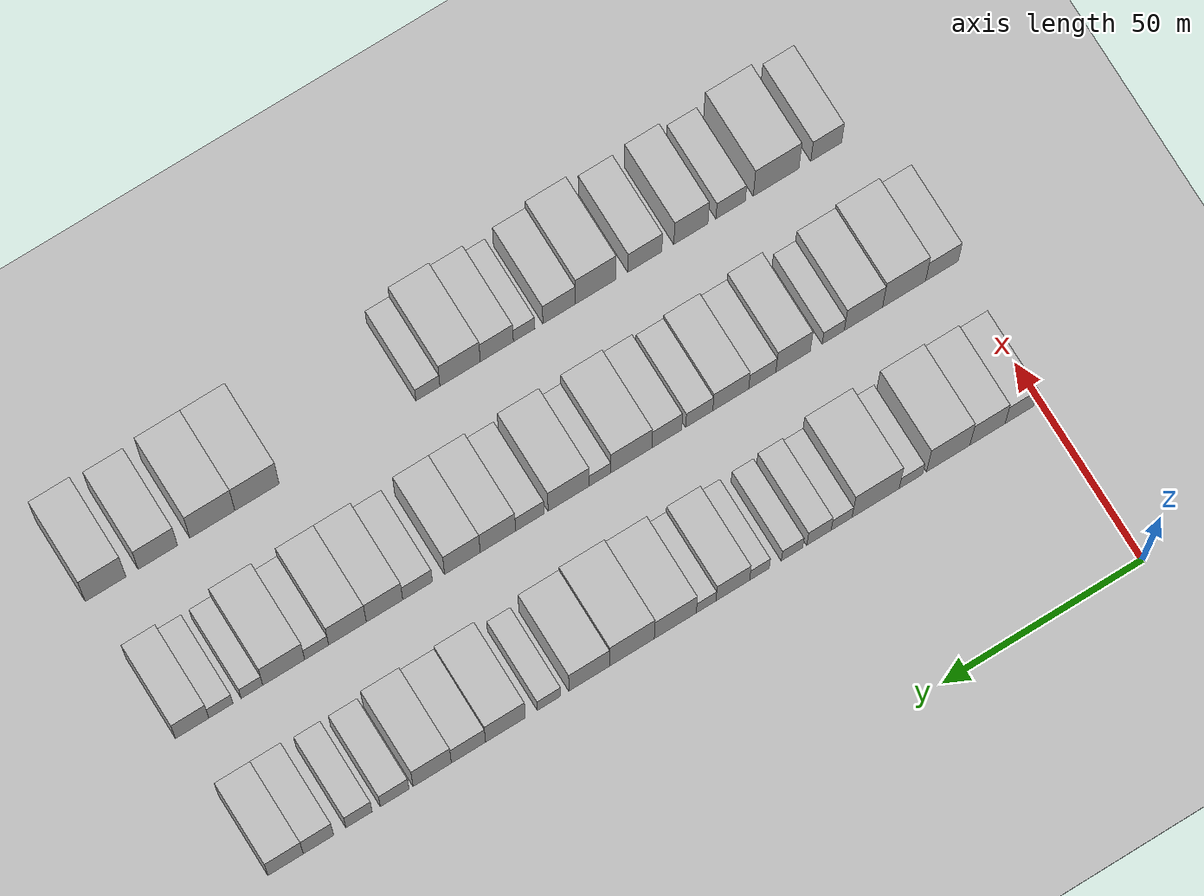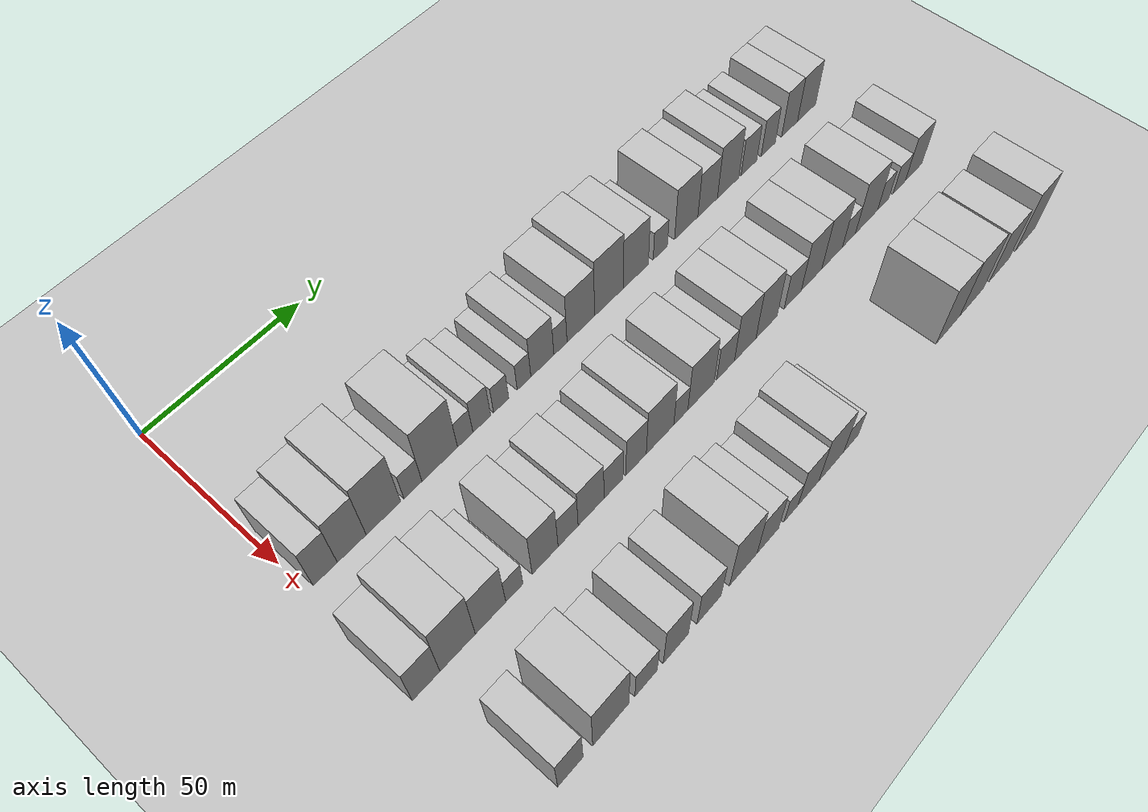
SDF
<sdf version="1.6">
 <world name="default">
  <include><name>ground_plane_1</name><uri>model://HANNAS_ground_plane</uri></include>
  <include>
   <name>ground_plane_2</name>
   <uri>model://HANNAS_ground_plane</uri>
   <pose>100 0 0  0 0 0</pose>
  </include>
  <model name="building_42">
   <static>1</static>
   <pose>50.0000 5.3623 0 0.000000 0.000000 0.000000</pose>
   <link name="link">
    <pose>0 0 9.00 0 0 0</pose>
    <collision name="collision"><geometry><box><size>20.0000 7.2227 18.0000</size></box></geometry></collision>
    <visual name="visual">
     <cast_shadows>0</cast_shadows>
     <geometry><box><size>20.0000 7.2227 18.0000</size></box></geometry>
     <material>
      <script>
       <uri>model://HANNAS_wall/materials/scripts</uri>
       <uri>model://HANNAS_wall/materials/textures</uri>
       <name>vrc/HANNAS_wall</name>
      </script>
     </material>
    </visual>
   </link>
  </model>
  <model name="building_43">
   <static>1</static>
   <pose>50.0000 13.3807 0 0.000000 0.000000 0.000000</pose>
   <link name="link">
    <pose>0 0 10.50 0 0 0</pose>
    <collision name="collision"><geometry><box><size>20.0000 8.8141 21.0000</size></box></geometry></collision>
    <visual name="visual">
     <cast_shadows>0</cast_shadows>
     <geometry><box><size>20.0000 8.8141 21.0000</size></box></geometry>
     <material>
      <script>
       <uri>model://HANNAS_wall/materials/scripts</uri>
       <uri>model://HANNAS_wall/materials/textures</uri>
       <name>vrc/HANNAS_wall</name>
      </script>
     </material>
    </visual>
   </link>
  </model>
  <model name="building_44">
   <static>1</static>
   <pose>50.0000 23.2152 0 0.000000 0.000000 0.000000</pose>
   <link name="link">
    <pose>0 0 12.00 0 0 0</pose>
    <collision name="collision"><geometry><box><size>20.0000 10.8548 24.0000</size></box></geometry></collision>
    <visual name="visual">
     <cast_shadows>0</cast_shadows>
     <geometry><box><size>20.0000 10.8548 24.0000</size></box></geometry>
     <material>
      <script>
       <uri>model://HANNAS_wall/materials/scripts</uri>
       <uri>model://HANNAS_wall/materials/textures</uri>
       <name>vrc/HANNAS_wall</name>
      </script>
     </material>
    </visual>
   </link>
  </model>
  <model name="building_45">
   <static>1</static>
   <pose>50.0000 32.5648 0 0.000000 0.000000 0.000000</pose>
   <link name="link">
    <pose>0 0 6.00 0 0 0</pose>
    <collision name="collision"><geometry><box><size>20.0000 5.8444 12.0000</size></box></geometry></collision>
    <visual name="visual">
     <cast_shadows>0</cast_shadows>
     <geometry><box><size>20.0000 5.8444 12.0000</size></box></geometry>
     <material>
      <script>
       <uri>model://HANNAS_wall/materials/scripts</uri>
       <uri>model://HANNAS_wall/materials/textures</uri>
       <name>vrc/HANNAS_wall</name>
      </script>
     </material>
    </visual>
   </link>
  </model>
  <model name="building_46">
   <static>1</static>
   <pose>50.0000 41.3841 0 0.000000 0.000000 0.000000</pose>
   <link name="link">
    <pose>0 0 12.00 0 0 0</pose>
    <collision name="collision"><geometry><box><size>20.0000 11.7943 24.0000</size></box></geometry></collision>
    <visual name="visual">
     <cast_shadows>0</cast_shadows>
     <geometry><box><size>20.0000 11.7943 24.0000</size></box></geometry>
     <material>
      <script>
       <uri>model://HANNAS_wall/materials/scripts</uri>
       <uri>model://HANNAS_wall/materials/textures</uri>
       <name>vrc/HANNAS_wall</name>
      </script>
     </material>
    </visual>
   </link>
  </model>
  <model name="building_47">
   <static>1</static>
   <pose>50.0000 49.8816 0 0.000000 0.000000 0.000000</pose>
   <link name="link">
    <pose>0 0 6.00 0 0 0</pose>
    <collision name="collision"><geometry><box><size>20.0000 5.2007 12.0000</size></box></geometry></collision>
    <visual name="visual">
     <cast_shadows>0</cast_shadows>
     <geometry><box><size>20.0000 5.2007 12.0000</size></box></geometry>
     <material>
      <script>
       <uri>model://HANNAS_wall/materials/scripts</uri>
       <uri>model://HANNAS_wall/materials/textures</uri>
       <name>vrc/HANNAS_wall</name>
      </script>
     </material>
    </visual>
   </link>
  </model>
  <model name="building_48">
   <static>1</static>
   <pose>50.0000 55.5317 0 0.000000 0.000000 0.000000</pose>
   <link name="link">
    <pose>0 0 7.50 0 0 0</pose>
    <collision name="collision"><geometry><box><size>20.0000 6.0996 15.0000</size></box></geometry></collision>
    <visual name="visual">
     <cast_shadows>0</cast_shadows>
     <geometry><box><size>20.0000 6.0996 15.0000</size></box></geometry>
     <material>
      <script>
       <uri>model://HANNAS_wall/materials/scripts</uri>
       <uri>model://HANNAS_wall/materials/textures</uri>
       <name>vrc/HANNAS_wall</name>
      </script>
     </material>
    </visual>
   </link>
  </model>
  <model name="building_49">
   <static>1</static>
   <pose>50.0000 62.2439 0 0.000000 0.000000 0.000000</pose>
   <link name="link">
    <pose>0 0 6.00 0 0 0</pose>
    <collision name="collision"><geometry><box><size>20.0000 5.3247 12.0000</size></box></geometry></collision>
    <visual name="visual">
     <cast_shadows>0</cast_shadows>
     <geometry><box><size>20.0000 5.3247 12.0000</size></box></geometry>
     <material>
      <script>
       <uri>model://HANNAS_wall/materials/scripts</uri>
       <uri>model://HANNAS_wall/materials/textures</uri>
       <name>vrc/HANNAS_wall</name>
      </script>
     </material>
    </visual>
   </link>
  </model>
  <model name="building_50">
   <static>1</static>
   <pose>50.0000 70.3607 0 0.000000 0.000000 0.000000</pose>
   <link name="link">
    <pose>0 0 6.00 0 0 0</pose>
    <collision name="collision"><geometry><box><size>20.0000 4.9091 12.0000</size></box></geometry></collision>
    <visual name="visual">
     <cast_shadows>0</cast_shadows>
     <geometry><box><size>20.0000 4.9091 12.0000</size></box></geometry>
     <material>
      <script>
       <uri>model://HANNAS_wall/materials/scripts</uri>
       <uri>model://HANNAS_wall/materials/textures</uri>
       <name>vrc/HANNAS_wall</name>
      </script>
     </material>
    </visual>
   </link>
  </model>
  <model name="building_51">
   <static>1</static>
   <pose>50.0000 76.9993 0 0.000000 0.000000 0.000000</pose>
   <link name="link">
    <pose>0 0 9.00 0 0 0</pose>
    <collision name="collision"><geometry><box><size>20.0000 8.3681 18.0000</size></box></geometry></collision>
    <visual name="visual">
     <cast_shadows>0</cast_shadows>
     <geometry><box><size>20.0000 8.3681 18.0000</size></box></geometry>
     <material>
      <script>
       <uri>model://HANNAS_wall/materials/scripts</uri>
       <uri>model://HANNAS_wall/materials/textures</uri>
       <name>vrc/HANNAS_wall</name>
      </script>
     </material>
    </visual>
   </link>
  </model>
  <model name="building_52">
   <static>1</static>
   <pose>50.0000 83.6288 0 0.000000 0.000000 0.000000</pose>
   <link name="link">
    <pose>0 0 6.00 0 0 0</pose>
    <collision name="collision"><geometry><box><size>20.0000 4.8908 12.0000</size></box></geometry></collision>
    <visual name="visual">
     <cast_shadows>0</cast_shadows>
     <geometry><box><size>20.0000 4.8908 12.0000</size></box></geometry>
     <material>
      <script>
       <uri>model://HANNAS_wall/materials/scripts</uri>
       <uri>model://HANNAS_wall/materials/textures</uri>
       <name>vrc/HANNAS_wall</name>
      </script>
     </material>
    </visual>
   </link>
  </model>
  <model name="building_53">
   <static>1</static>
   <pose>50.0000 91.2837 0 0.000000 0.000000 0.000000</pose>
   <link name="link">
    <pose>0 0 10.50 0 0 0</pose>
    <collision name="collision"><geometry><box><size>20.0000 10.4191 21.0000</size></box></geometry></collision>
    <visual name="visual">
     <cast_shadows>0</cast_shadows>
     <geometry><box><size>20.0000 10.4191 21.0000</size></box></geometry>
     <material>
      <script>
       <uri>model://HANNAS_wall/materials/scripts</uri>
       <uri>model://HANNAS_wall/materials/textures</uri>
       <name>vrc/HANNAS_wall</name>
      </script>
     </material>
    </visual>
   </link>
  </model>
  <model name="building_54">
   <static>1</static>
   <pose>50.0000 102.0477 0 0.000000 0.000000 0.000000</pose>
   <link name="link">
    <pose>0 0 12.00 0 0 0</pose>
    <collision name="collision"><geometry><box><size>20.0000 11.1091 24.0000</size></box></geometry></collision>
    <visual name="visual">
     <cast_shadows>0</cast_shadows>
     <geometry><box><size>20.0000 11.1091 24.0000</size></box></geometry>
     <material>
      <script>
       <uri>model://HANNAS_wall/materials/scripts</uri>
       <uri>model://HANNAS_wall/materials/textures</uri>
       <name>vrc/HANNAS_wall</name>
      </script>
     </material>
    </visual>
   </link>
  </model>
  <model name="building_55">
   <static>1</static>
   <pose>50.0000 112.6221 0 0.000000 0.000000 0.000000</pose>
   <link name="link">
    <pose>0 0 10.50 0 0 0</pose>
    <collision name="collision"><geometry><box><size>20.0000 10.0397 21.0000</size></box></geometry></collision>
    <visual name="visual">
     <cast_shadows>0</cast_shadows>
     <geometry><box><size>20.0000 10.0397 21.0000</size></box></geometry>
     <material>
      <script>
       <uri>model://HANNAS_wall/materials/scripts</uri>
       <uri>model://HANNAS_wall/materials/textures</uri>
       <name>vrc/HANNAS_wall</name>
      </script>
     </material>
    </visual>
   </link>
  </model>
  <model name="building_56">
   <static>1</static>
   <pose>50.0000 122.5321 0 0.000000 0.000000 0.000000</pose>
   <link name="link">
    <pose>0 0 6.00 0 0 0</pose>
    <collision name="collision"><geometry><box><size>20.0000 5.7802 12.0000</size></box></geometry></collision>
    <visual name="visual">
     <cast_shadows>0</cast_shadows>
     <geometry><box><size>20.0000 5.7802 12.0000</size></box></geometry>
     <material>
      <script>
       <uri>model://HANNAS_wall/materials/scripts</uri>
       <uri>model://HANNAS_wall/materials/textures</uri>
       <name>vrc/HANNAS_wall</name>
      </script>
     </material>
    </visual>
   </link>
  </model>
  <model name="building_57">
   <static>1</static>
   <pose>50.0000 133.3213 0 0.000000 0.000000 0.000000</pose>
   <link name="link">
    <pose>0 0 10.50 0 0 0</pose>
    <collision name="collision"><geometry><box><size>20.0000 9.7981 21.0000</size></box></geometry></collision>
    <visual name="visual">
     <cast_shadows>0</cast_shadows>
     <geometry><box><size>20.0000 9.7981 21.0000</size></box></geometry>
     <material>
      <script>
       <uri>model://HANNAS_wall/materials/scripts</uri>
       <uri>model://HANNAS_wall/materials/textures</uri>
       <name>vrc/HANNAS_wall</name>
      </script>
     </material>
    </visual>
   </link>
  </model>
  <model name="building_58">
   <static>1</static>
   <pose>50.0000 142.4377 0 0.000000 0.000000 0.000000</pose>
   <link name="link">
    <pose>0 0 9.00 0 0 0</pose>
    <collision name="collision"><geometry><box><size>20.0000 8.4347 18.0000</size></box></geometry></collision>
    <visual name="visual">
     <cast_shadows>0</cast_shadows>
     <geometry><box><size>20.0000 8.4347 18.0000</size></box></geometry>
     <material>
      <script>
       <uri>model://HANNAS_wall/materials/scripts</uri>
       <uri>model://HANNAS_wall/materials/textures</uri>
       <name>vrc/HANNAS_wall</name>
      </script>
     </material>
    </visual>
   </link>
  </model>
  <model name="building_59">
   <static>1</static>
   <pose>50.0000 151.3625 0 0.000000 0.000000 0.000000</pose>
   <link name="link">
    <pose>0 0 10.50 0 0 0</pose>
    <collision name="collision"><geometry><box><size>20.0000 9.4147 21.0000</size></box></geometry></collision>
    <visual name="visual">
     <cast_shadows>0</cast_shadows>
     <geometry><box><size>20.0000 9.4147 21.0000</size></box></geometry>
     <material>
      <script>
       <uri>model://HANNAS_wall/materials/scripts</uri>
       <uri>model://HANNAS_wall/materials/textures</uri>
       <name>vrc/HANNAS_wall</name>
      </script>
     </material>
    </visual>
   </link>
  </model>
  <model name="building_60">
   <static>1</static>
   <pose>50.0000 160.6010 0 0.000000 0.000000 0.000000</pose>
   <link name="link">
    <pose>0 0 7.50 0 0 0</pose>
    <collision name="collision"><geometry><box><size>20.0000 7.0624 15.0000</size></box></geometry></collision>
    <visual name="visual">
     <cast_shadows>0</cast_shadows>
     <geometry><box><size>20.0000 7.0624 15.0000</size></box></geometry>
     <material>
      <script>
       <uri>model://HANNAS_wall/materials/scripts</uri>
       <uri>model://HANNAS_wall/materials/textures</uri>
       <name>vrc/HANNAS_wall</name>
      </script>
     </material>
    </visual>
   </link>
  </model>
  <model name="building_61">
   <static>1</static>
   <pose>50.0000 169.3668 0 0.000000 0.000000 0.000000</pose>
   <link name="link">
    <pose>0 0 7.50 0 0 0</pose>
    <collision name="collision"><geometry><box><size>20.0000 6.4691 15.0000</size></box></geometry></collision>
    <visual name="visual">
     <cast_shadows>0</cast_shadows>
     <geometry><box><size>20.0000 6.4691 15.0000</size></box></geometry>
     <material>
      <script>
       <uri>model://HANNAS_wall/materials/scripts</uri>
       <uri>model://HANNAS_wall/materials/textures</uri>
       <name>vrc/HANNAS_wall</name>
      </script>
     </material>
    </visual>
   </link>
  </model>
  <model name="building_62">
   <static>1</static>
   <pose>50.0000 179.3316 0 0.000000 0.000000 0.000000</pose>
   <link name="link">
    <pose>0 0 9.00 0 0 0</pose>
    <collision name="collision"><geometry><box><size>20.0000 7.4606 18.0000</size></box></geometry></collision>
    <visual name="visual">
     <cast_shadows>0</cast_shadows>
     <geometry><box><size>20.0000 7.4606 18.0000</size></box></geometry>
     <material>
      <script>
       <uri>model://HANNAS_wall/materials/scripts</uri>
       <uri>model://HANNAS_wall/materials/textures</uri>
       <name>vrc/HANNAS_wall</name>
      </script>
     </material>
    </visual>
   </link>
  </model>
  <model name="building_63">
   <static>1</static>
   <pose>50.0000 187.3936 0 0.000000 0.000000 0.000000</pose>
   <link name="link">
    <pose>0 0 9.00 0 0 0</pose>
    <collision name="collision"><geometry><box><size>20.0000 8.6634 18.0000</size></box></geometry></collision>
    <visual name="visual">
     <cast_shadows>0</cast_shadows>
     <geometry><box><size>20.0000 8.6634 18.0000</size></box></geometry>
     <material>
      <script>
       <uri>model://HANNAS_wall/materials/scripts</uri>
       <uri>model://HANNAS_wall/materials/textures</uri>
       <name>vrc/HANNAS_wall</name>
      </script>
     </material>
    </visual>
   </link>
  </model>
  <model name="building_125">
   <static>1</static>
   <pose>85.0000 2.6177 0 0.000000 0.000000 0.000000</pose>
   <link name="link">
    <pose>0 0 9.00 0 0 0</pose>
    <collision name="collision"><geometry><box><size>20.0000 8.2199 18.0000</size></box></geometry></collision>
    <visual name="visual">
     <cast_shadows>0</cast_shadows>
     <geometry><box><size>20.0000 8.2199 18.0000</size></box></geometry>
     <material>
      <script>
       <uri>model://HANNAS_wall/materials/scripts</uri>
       <uri>model://HANNAS_wall/materials/textures</uri>
       <name>vrc/HANNAS_wall</name>
      </script>
     </material>
    </visual>
   </link>
  </model>
  <model name="building_126">
   <static>1</static>
   <pose>85.0000 12.1356 0 0.000000 0.000000 0.000000</pose>
   <link name="link">
    <pose>0 0 12.00 0 0 0</pose>
    <collision name="collision"><geometry><box><size>20.0000 10.8159 24.0000</size></box></geometry></collision>
    <visual name="visual">
     <cast_shadows>0</cast_shadows>
     <geometry><box><size>20.0000 10.8159 24.0000</size></box></geometry>
     <material>
      <script>
       <uri>model://HANNAS_wall/materials/scripts</uri>
       <uri>model://HANNAS_wall/materials/textures</uri>
       <name>vrc/HANNAS_wall</name>
      </script>
     </material>
    </visual>
   </link>
  </model>
  <model name="building_127">
   <static>1</static>
   <pose>85.0000 22.3559 0 0.000000 0.000000 0.000000</pose>
   <link name="link">
    <pose>0 0 10.50 0 0 0</pose>
    <collision name="collision"><geometry><box><size>20.0000 9.6248 21.0000</size></box></geometry></collision>
    <visual name="visual">
     <cast_shadows>0</cast_shadows>
     <geometry><box><size>20.0000 9.6248 21.0000</size></box></geometry>
     <material>
      <script>
       <uri>model://HANNAS_wall/materials/scripts</uri>
       <uri>model://HANNAS_wall/materials/textures</uri>
       <name>vrc/HANNAS_wall</name>
      </script>
     </material>
    </visual>
   </link>
  </model>
  <model name="building_128">
   <static>1</static>
   <pose>85.0000 29.9320 0 0.000000 0.000000 0.000000</pose>
   <link name="link">
    <pose>0 0 6.00 0 0 0</pose>
    <collision name="collision"><geometry><box><size>20.0000 5.5274 12.0000</size></box></geometry></collision>
    <visual name="visual">
     <cast_shadows>0</cast_shadows>
     <geometry><box><size>20.0000 5.5274 12.0000</size></box></geometry>
     <material>
      <script>
       <uri>model://HANNAS_wall/materials/scripts</uri>
       <uri>model://HANNAS_wall/materials/textures</uri>
       <name>vrc/HANNAS_wall</name>
      </script>
     </material>
    </visual>
   </link>
  </model>
  <model name="building_129">
   <static>1</static>
   <pose>85.0000 40.0095 0 0.000000 0.000000 0.000000</pose>
   <link name="link">
    <pose>0 0 10.50 0 0 0</pose>
    <collision name="collision"><geometry><box><size>20.0000 8.6275 21.0000</size></box></geometry></collision>
    <visual name="visual">
     <cast_shadows>0</cast_shadows>
     <geometry><box><size>20.0000 8.6275 21.0000</size></box></geometry>
     <material>
      <script>
       <uri>model://HANNAS_wall/materials/scripts</uri>
       <uri>model://HANNAS_wall/materials/textures</uri>
       <name>vrc/HANNAS_wall</name>
      </script>
     </material>
    </visual>
   </link>
  </model>
  <model name="building_130">
   <static>1</static>
   <pose>85.0000 47.7166 0 0.000000 0.000000 0.000000</pose>
   <link name="link">
    <pose>0 0 7.50 0 0 0</pose>
    <collision name="collision"><geometry><box><size>20.0000 6.7866 15.0000</size></box></geometry></collision>
    <visual name="visual">
     <cast_shadows>0</cast_shadows>
     <geometry><box><size>20.0000 6.7866 15.0000</size></box></geometry>
     <material>
      <script>
       <uri>model://HANNAS_wall/materials/scripts</uri>
       <uri>model://HANNAS_wall/materials/textures</uri>
       <name>vrc/HANNAS_wall</name>
      </script>
     </material>
    </visual>
   </link>
  </model>
  <model name="building_131">
   <static>1</static>
   <pose>85.0000 55.6029 0 0.000000 0.000000 0.000000</pose>
   <link name="link">
    <pose>0 0 9.00 0 0 0</pose>
    <collision name="collision"><geometry><box><size>20.0000 8.9859 18.0000</size></box></geometry></collision>
    <visual name="visual">
     <cast_shadows>0</cast_shadows>
     <geometry><box><size>20.0000 8.9859 18.0000</size></box></geometry>
     <material>
      <script>
       <uri>model://HANNAS_wall/materials/scripts</uri>
       <uri>model://HANNAS_wall/materials/textures</uri>
       <name>vrc/HANNAS_wall</name>
      </script>
     </material>
    </visual>
   </link>
  </model>
  <model name="building_132">
   <static>1</static>
   <pose>85.0000 63.4794 0 0.000000 0.000000 0.000000</pose>
   <link name="link">
    <pose>0 0 7.50 0 0 0</pose>
    <collision name="collision"><geometry><box><size>20.0000 6.7671 15.0000</size></box></geometry></collision>
    <visual name="visual">
     <cast_shadows>0</cast_shadows>
     <geometry><box><size>20.0000 6.7671 15.0000</size></box></geometry>
     <material>
      <script>
       <uri>model://HANNAS_wall/materials/scripts</uri>
       <uri>model://HANNAS_wall/materials/textures</uri>
       <name>vrc/HANNAS_wall</name>
      </script>
     </material>
    </visual>
   </link>
  </model>
  <model name="building_133">
   <static>1</static>
   <pose>85.0000 71.5794 0 0.000000 0.000000 0.000000</pose>
   <link name="link">
    <pose>0 0 9.00 0 0 0</pose>
    <collision name="collision"><geometry><box><size>20.0000 7.4329 18.0000</size></box></geometry></collision>
    <visual name="visual">
     <cast_shadows>0</cast_shadows>
     <geometry><box><size>20.0000 7.4329 18.0000</size></box></geometry>
     <material>
      <script>
       <uri>model://HANNAS_wall/materials/scripts</uri>
       <uri>model://HANNAS_wall/materials/textures</uri>
       <name>vrc/HANNAS_wall</name>
      </script>
     </material>
    </visual>
   </link>
  </model>
  <model name="building_134">
   <static>1</static>
   <pose>85.0000 80.4297 0 0.000000 0.000000 0.000000</pose>
   <link name="link">
    <pose>0 0 10.50 0 0 0</pose>
    <collision name="collision"><geometry><box><size>20.0000 10.2678 21.0000</size></box></geometry></collision>
    <visual name="visual">
     <cast_shadows>0</cast_shadows>
     <geometry><box><size>20.0000 10.2678 21.0000</size></box></geometry>
     <material>
      <script>
       <uri>model://HANNAS_wall/materials/scripts</uri>
       <uri>model://HANNAS_wall/materials/textures</uri>
       <name>vrc/HANNAS_wall</name>
      </script>
     </material>
    </visual>
   </link>
  </model>
  <model name="building_135">
   <static>1</static>
   <pose>85.0000 88.2273 0 0.000000 0.000000 0.000000</pose>
   <link name="link">
    <pose>0 0 6.00 0 0 0</pose>
    <collision name="collision"><geometry><box><size>20.0000 5.3273 12.0000</size></box></geometry></collision>
    <visual name="visual">
     <cast_shadows>0</cast_shadows>
     <geometry><box><size>20.0000 5.3273 12.0000</size></box></geometry>
     <material>
      <script>
       <uri>model://HANNAS_wall/materials/scripts</uri>
       <uri>model://HANNAS_wall/materials/textures</uri>
       <name>vrc/HANNAS_wall</name>
      </script>
     </material>
    </visual>
   </link>
  </model>
  <model name="building_136">
   <static>1</static>
   <pose>85.0000 96.0037 0 0.000000 0.000000 0.000000</pose>
   <link name="link">
    <pose>0 0 10.50 0 0 0</pose>
    <collision name="collision"><geometry><box><size>20.0000 10.2254 21.0000</size></box></geometry></collision>
    <visual name="visual">
     <cast_shadows>0</cast_shadows>
     <geometry><box><size>20.0000 10.2254 21.0000</size></box></geometry>
     <material>
      <script>
       <uri>model://HANNAS_wall/materials/scripts</uri>
       <uri>model://HANNAS_wall/materials/textures</uri>
       <name>vrc/HANNAS_wall</name>
      </script>
     </material>
    </visual>
   </link>
  </model>
  <model name="building_137">
   <static>1</static>
   <pose>85.0000 105.6505 0 0.000000 0.000000 0.000000</pose>
   <link name="link">
    <pose>0 0 7.50 0 0 0</pose>
    <collision name="collision"><geometry><box><size>20.0000 7.0683 15.0000</size></box></geometry></collision>
    <visual name="visual">
     <cast_shadows>0</cast_shadows>
     <geometry><box><size>20.0000 7.0683 15.0000</size></box></geometry>
     <material>
      <script>
       <uri>model://HANNAS_wall/materials/scripts</uri>
       <uri>model://HANNAS_wall/materials/textures</uri>
       <name>vrc/HANNAS_wall</name>
      </script>
     </material>
    </visual>
   </link>
  </model>
  <model name="building_138">
   <static>1</static>
   <pose>85.0000 113.5730 0 0.000000 0.000000 0.000000</pose>
   <link name="link">
    <pose>0 0 10.50 0 0 0</pose>
    <collision name="collision"><geometry><box><size>20.0000 8.7768 21.0000</size></box></geometry></collision>
    <visual name="visual">
     <cast_shadows>0</cast_shadows>
     <geometry><box><size>20.0000 8.7768 21.0000</size></box></geometry>
     <material>
      <script>
       <uri>model://HANNAS_wall/materials/scripts</uri>
       <uri>model://HANNAS_wall/materials/textures</uri>
       <name>vrc/HANNAS_wall</name>
      </script>
     </material>
    </visual>
   </link>
  </model>
  <model name="building_139">
   <static>1</static>
   <pose>85.0000 122.3743 0 0.000000 0.000000 0.000000</pose>
   <link name="link">
    <pose>0 0 10.50 0 0 0</pose>
    <collision name="collision"><geometry><box><size>20.0000 8.8257 21.0000</size></box></geometry></collision>
    <visual name="visual">
     <cast_shadows>0</cast_shadows>
     <geometry><box><size>20.0000 8.8257 21.0000</size></box></geometry>
     <material>
      <script>
       <uri>model://HANNAS_wall/materials/scripts</uri>
       <uri>model://HANNAS_wall/materials/textures</uri>
       <name>vrc/HANNAS_wall</name>
      </script>
     </material>
    </visual>
   </link>
  </model>
  <model name="building_140">
   <static>1</static>
   <pose>85.0000 133.4580 0 0.000000 0.000000 0.000000</pose>
   <link name="link">
    <pose>0 0 7.50 0 0 0</pose>
    <collision name="collision"><geometry><box><size>20.0000 7.3418 15.0000</size></box></geometry></collision>
    <visual name="visual">
     <cast_shadows>0</cast_shadows>
     <geometry><box><size>20.0000 7.3418 15.0000</size></box></geometry>
     <material>
      <script>
       <uri>model://HANNAS_wall/materials/scripts</uri>
       <uri>model://HANNAS_wall/materials/textures</uri>
       <name>vrc/HANNAS_wall</name>
      </script>
     </material>
    </visual>
   </link>
  </model>
  <model name="building_141">
   <static>1</static>
   <pose>85.0000 141.6331 0 0.000000 0.000000 0.000000</pose>
   <link name="link">
    <pose>0 0 10.50 0 0 0</pose>
    <collision name="collision"><geometry><box><size>20.0000 9.0083 21.0000</size></box></geometry></collision>
    <visual name="visual">
     <cast_shadows>0</cast_shadows>
     <geometry><box><size>20.0000 9.0083 21.0000</size></box></geometry>
     <material>
      <script>
       <uri>model://HANNAS_wall/materials/scripts</uri>
       <uri>model://HANNAS_wall/materials/textures</uri>
       <name>vrc/HANNAS_wall</name>
      </script>
     </material>
    </visual>
   </link>
  </model>
  <model name="building_142">
   <static>1</static>
   <pose>85.0000 150.7855 0 0.000000 0.000000 0.000000</pose>
   <link name="link">
    <pose>0 0 10.50 0 0 0</pose>
    <collision name="collision"><geometry><box><size>20.0000 9.2964 21.0000</size></box></geometry></collision>
    <visual name="visual">
     <cast_shadows>0</cast_shadows>
     <geometry><box><size>20.0000 9.2964 21.0000</size></box></geometry>
     <material>
      <script>
       <uri>model://HANNAS_wall/materials/scripts</uri>
       <uri>model://HANNAS_wall/materials/textures</uri>
       <name>vrc/HANNAS_wall</name>
      </script>
     </material>
    </visual>
   </link>
  </model>
  <model name="building_143">
   <static>1</static>
   <pose>85.0000 158.3916 0 0.000000 0.000000 0.000000</pose>
   <link name="link">
    <pose>0 0 6.00 0 0 0</pose>
    <collision name="collision"><geometry><box><size>20.0000 5.9157 12.0000</size></box></geometry></collision>
    <visual name="visual">
     <cast_shadows>0</cast_shadows>
     <geometry><box><size>20.0000 5.9157 12.0000</size></box></geometry>
     <material>
      <script>
       <uri>model://HANNAS_wall/materials/scripts</uri>
       <uri>model://HANNAS_wall/materials/textures</uri>
       <name>vrc/HANNAS_wall</name>
      </script>
     </material>
    </visual>
   </link>
  </model>
  <model name="building_144">
   <static>1</static>
   <pose>85.0000 166.5102 0 0.000000 0.000000 0.000000</pose>
   <link name="link">
    <pose>0 0 10.50 0 0 0</pose>
    <collision name="collision"><geometry><box><size>20.0000 10.3215 21.0000</size></box></geometry></collision>
    <visual name="visual">
     <cast_shadows>0</cast_shadows>
     <geometry><box><size>20.0000 10.3215 21.0000</size></box></geometry>
     <material>
      <script>
       <uri>model://HANNAS_wall/materials/scripts</uri>
       <uri>model://HANNAS_wall/materials/textures</uri>
       <name>vrc/HANNAS_wall</name>
      </script>
     </material>
    </visual>
   </link>
  </model>
  <model name="building_145">
   <static>1</static>
   <pose>85.0000 174.3309 0 0.000000 0.000000 0.000000</pose>
   <link name="link">
    <pose>0 0 6.00 0 0 0</pose>
    <collision name="collision"><geometry><box><size>20.0000 5.3200 12.0000</size></box></geometry></collision>
    <visual name="visual">
     <cast_shadows>0</cast_shadows>
     <geometry><box><size>20.0000 5.3200 12.0000</size></box></geometry>
     <material>
      <script>
       <uri>model://HANNAS_wall/materials/scripts</uri>
       <uri>model://HANNAS_wall/materials/textures</uri>
       <name>vrc/HANNAS_wall</name>
      </script>
     </material>
    </visual>
   </link>
  </model>
  <model name="building_146">
   <static>1</static>
   <pose>85.0000 181.9582 0 0.000000 0.000000 0.000000</pose>
   <link name="link">
    <pose>0 0 6.00 0 0 0</pose>
    <collision name="collision"><geometry><box><size>20.0000 5.9347 12.0000</size></box></geometry></collision>
    <visual name="visual">
     <cast_shadows>0</cast_shadows>
     <geometry><box><size>20.0000 5.9347 12.0000</size></box></geometry>
     <material>
      <script>
       <uri>model://HANNAS_wall/materials/scripts</uri>
       <uri>model://HANNAS_wall/materials/textures</uri>
       <name>vrc/HANNAS_wall</name>
      </script>
     </material>
    </visual>
   </link>
  </model>
  <model name="building_147">
   <static>1</static>
   <pose>85.0000 189.0412 0 0.000000 0.000000 0.000000</pose>
   <link name="link">
    <pose>0 0 9.00 0 0 0</pose>
    <collision name="collision"><geometry><box><size>20.0000 8.2312 18.0000</size></box></geometry></collision>
    <visual name="visual">
     <cast_shadows>0</cast_shadows>
     <geometry><box><size>20.0000 8.2312 18.0000</size></box></geometry>
     <material>
      <script>
       <uri>model://HANNAS_wall/materials/scripts</uri>
       <uri>model://HANNAS_wall/materials/textures</uri>
       <name>vrc/HANNAS_wall</name>
      </script>
     </material>
    </visual>
   </link>
  </model>
  <model name="building_206">
   <static>1</static>
   <pose>120.0000 9.6572 0 0.000000 0.000000 0.000000</pose>
   <link name="link">
    <pose>0 0 9.00 0 0 0</pose>
    <collision name="collision"><geometry><box><size>20.0000 7.7785 18.0000</size></box></geometry></collision>
    <visual name="visual">
     <cast_shadows>0</cast_shadows>
     <geometry><box><size>20.0000 7.7785 18.0000</size></box></geometry>
     <material>
      <script>
       <uri>model://HANNAS_wall/materials/scripts</uri>
       <uri>model://HANNAS_wall/materials/textures</uri>
       <name>vrc/HANNAS_wall</name>
      </script>
     </material>
    </visual>
   </link>
  </model>
  <model name="building_207">
   <static>1</static>
   <pose>120.0000 22.2845 0 0.000000 0.000000 0.000000</pose>
   <link name="link">
    <pose>0 0 12.00 0 0 0</pose>
    <collision name="collision"><geometry><box><size>20.0000 11.4762 24.0000</size></box></geometry></collision>
    <visual name="visual">
     <cast_shadows>0</cast_shadows>
     <geometry><box><size>20.0000 11.4762 24.0000</size></box></geometry>
     <material>
      <script>
       <uri>model://HANNAS_wall/materials/scripts</uri>
       <uri>model://HANNAS_wall/materials/textures</uri>
       <name>vrc/HANNAS_wall</name>
      </script>
     </material>
    </visual>
   </link>
  </model>
  <model name="building_208">
   <static>1</static>
   <pose>120.0000 33.7239 0 0.000000 0.000000 0.000000</pose>
   <link name="link">
    <pose>0 0 7.50 0 0 0</pose>
    <collision name="collision"><geometry><box><size>20.0000 7.4027 15.0000</size></box></geometry></collision>
    <visual name="visual">
     <cast_shadows>0</cast_shadows>
     <geometry><box><size>20.0000 7.4027 15.0000</size></box></geometry>
     <material>
      <script>
       <uri>model://HANNAS_wall/materials/scripts</uri>
       <uri>model://HANNAS_wall/materials/textures</uri>
       <name>vrc/HANNAS_wall</name>
      </script>
     </material>
    </visual>
   </link>
  </model>
  <model name="building_209">
   <static>1</static>
   <pose>120.0000 43.7082 0 0.000000 0.000000 0.000000</pose>
   <link name="link">
    <pose>0 0 10.50 0 0 0</pose>
    <collision name="collision"><geometry><box><size>20.0000 8.5657 21.0000</size></box></geometry></collision>
    <visual name="visual">
     <cast_shadows>0</cast_shadows>
     <geometry><box><size>20.0000 8.5657 21.0000</size></box></geometry>
     <material>
      <script>
       <uri>model://HANNAS_wall/materials/scripts</uri>
       <uri>model://HANNAS_wall/materials/textures</uri>
       <name>vrc/HANNAS_wall</name>
      </script>
     </material>
    </visual>
   </link>
  </model>
  <model name="building_210">
   <static>1</static>
   <pose>120.0000 55.2477 0 0.000000 0.000000 0.000000</pose>
   <link name="link">
    <pose>0 0 9.00 0 0 0</pose>
    <collision name="collision"><geometry><box><size>20.0000 8.5135 18.0000</size></box></geometry></collision>
    <visual name="visual">
     <cast_shadows>0</cast_shadows>
     <geometry><box><size>20.0000 8.5135 18.0000</size></box></geometry>
     <material>
      <script>
       <uri>model://HANNAS_wall/materials/scripts</uri>
       <uri>model://HANNAS_wall/materials/textures</uri>
       <name>vrc/HANNAS_wall</name>
      </script>
     </material>
    </visual>
   </link>
  </model>
  <model name="building_211">
   <static>1</static>
   <pose>120.0000 67.5654 0 0.000000 0.000000 0.000000</pose>
   <link name="link">
    <pose>0 0 12.00 0 0 0</pose>
    <collision name="collision"><geometry><box><size>20.0000 10.1218 24.0000</size></box></geometry></collision>
    <visual name="visual">
     <cast_shadows>0</cast_shadows>
     <geometry><box><size>20.0000 10.1218 24.0000</size></box></geometry>
     <material>
      <script>
       <uri>model://HANNAS_wall/materials/scripts</uri>
       <uri>model://HANNAS_wall/materials/textures</uri>
       <name>vrc/HANNAS_wall</name>
      </script>
     </material>
    </visual>
   </link>
  </model>
  <model name="building_212">
   <static>1</static>
   <pose>120.0000 76.6872 0 0.000000 0.000000 0.000000</pose>
   <link name="link">
    <pose>0 0 9.00 0 0 0</pose>
    <collision name="collision"><geometry><box><size>20.0000 8.1219 18.0000</size></box></geometry></collision>
    <visual name="visual">
     <cast_shadows>0</cast_shadows>
     <geometry><box><size>20.0000 8.1219 18.0000</size></box></geometry>
     <material>
      <script>
       <uri>model://HANNAS_wall/materials/scripts</uri>
       <uri>model://HANNAS_wall/materials/textures</uri>
       <name>vrc/HANNAS_wall</name>
      </script>
     </material>
    </visual>
   </link>
  </model>
  <model name="building_213">
   <static>1</static>
   <pose>120.0000 85.4337 0 0.000000 0.000000 0.000000</pose>
   <link name="link">
    <pose>0 0 6.00 0 0 0</pose>
    <collision name="collision"><geometry><box><size>20.0000 5.3712 12.0000</size></box></geometry></collision>
    <visual name="visual">
     <cast_shadows>0</cast_shadows>
     <geometry><box><size>20.0000 5.3712 12.0000</size></box></geometry>
     <material>
      <script>
       <uri>model://HANNAS_wall/materials/scripts</uri>
       <uri>model://HANNAS_wall/materials/textures</uri>
       <name>vrc/HANNAS_wall</name>
      </script>
     </material>
    </visual>
   </link>
  </model>
  <model name="building_214">
   <static>1</static>
   <pose>120.0000 92.2455 0 0.000000 0.000000 0.000000</pose>
   <link name="link">
    <pose>0 0 9.00 0 0 0</pose>
    <collision name="collision"><geometry><box><size>20.0000 8.2524 18.0000</size></box></geometry></collision>
    <visual name="visual">
     <cast_shadows>0</cast_shadows>
     <geometry><box><size>20.0000 8.2524 18.0000</size></box></geometry>
     <material>
      <script>
       <uri>model://HANNAS_wall/materials/scripts</uri>
       <uri>model://HANNAS_wall/materials/textures</uri>
       <name>vrc/HANNAS_wall</name>
      </script>
     </material>
    </visual>
   </link>
  </model>
  <model name="building_215">
   <static>1</static>
   <pose>120.0000 101.3988 0 0.000000 0.000000 0.000000</pose>
   <link name="link">
    <pose>0 0 10.50 0 0 0</pose>
    <collision name="collision"><geometry><box><size>20.0000 10.0542 21.0000</size></box></geometry></collision>
    <visual name="visual">
     <cast_shadows>0</cast_shadows>
     <geometry><box><size>20.0000 10.0542 21.0000</size></box></geometry>
     <material>
      <script>
       <uri>model://HANNAS_wall/materials/scripts</uri>
       <uri>model://HANNAS_wall/materials/textures</uri>
       <name>vrc/HANNAS_wall</name>
      </script>
     </material>
    </visual>
   </link>
  </model>
  <model name="building_216">
   <static>1</static>
   <pose>120.0000 109.4101 0 0.000000 0.000000 0.000000</pose>
   <link name="link">
    <pose>0 0 6.00 0 0 0</pose>
    <collision name="collision"><geometry><box><size>20.0000 5.9686 12.0000</size></box></geometry></collision>
    <visual name="visual">
     <cast_shadows>0</cast_shadows>
     <geometry><box><size>20.0000 5.9686 12.0000</size></box></geometry>
     <material>
      <script>
       <uri>model://HANNAS_wall/materials/scripts</uri>
       <uri>model://HANNAS_wall/materials/textures</uri>
       <name>vrc/HANNAS_wall</name>
      </script>
     </material>
    </visual>
   </link>
  </model>
  <model name="building_217">
   <static>1</static>
   <pose>120.0000 151.8191 0 0.000000 0.000000 0.000000</pose>
   <link name="link">
    <pose>0 0 12.00 0 0 0</pose>
    <collision name="collision"><geometry><box><size>20.0000 10.9498 24.0000</size></box></geometry></collision>
    <visual name="visual">
     <cast_shadows>0</cast_shadows>
     <geometry><box><size>20.0000 10.9498 24.0000</size></box></geometry>
     <material>
      <script>
       <uri>model://HANNAS_wall/materials/scripts</uri>
       <uri>model://HANNAS_wall/materials/textures</uri>
       <name>vrc/HANNAS_wall</name>
      </script>
     </material>
    </visual>
   </link>
  </model>
  <model name="building_218">
   <static>1</static>
   <pose>120.0000 162.8584 0 0.000000 0.000000 0.000000</pose>
   <link name="link">
    <pose>0 0 12.00 0 0 0</pose>
    <collision name="collision"><geometry><box><size>20.0000 11.1290 24.0000</size></box></geometry></collision>
    <visual name="visual">
     <cast_shadows>0</cast_shadows>
     <geometry><box><size>20.0000 11.1290 24.0000</size></box></geometry>
     <material>
      <script>
       <uri>model://HANNAS_wall/materials/scripts</uri>
       <uri>model://HANNAS_wall/materials/textures</uri>
       <name>vrc/HANNAS_wall</name>
      </script>
     </material>
    </visual>
   </link>
  </model>
  <model name="building_219">
   <static>1</static>
   <pose>120.0000 176.2902 0 0.000000 0.000000 0.000000</pose>
   <link name="link">
    <pose>0 0 10.50 0 0 0</pose>
    <collision name="collision"><geometry><box><size>20.0000 9.7346 21.0000</size></box></geometry></collision>
    <visual name="visual">
     <cast_shadows>0</cast_shadows>
     <geometry><box><size>20.0000 9.7346 21.0000</size></box></geometry>
     <material>
      <script>
       <uri>model://HANNAS_wall/materials/scripts</uri>
       <uri>model://HANNAS_wall/materials/textures</uri>
       <name>vrc/HANNAS_wall</name>
      </script>
     </material>
    </visual>
   </link>
  </model>
  <model name="building_220">
   <static>1</static>
   <pose>120.0000 189.1688 0 0.000000 0.000000 0.000000</pose>
   <link name="link">
    <pose>0 0 12.00 0 0 0</pose>
    <collision name="collision"><geometry><box><size>20.0000 10.0226 24.0000</size></box></geometry></collision>
    <visual name="visual">
     <cast_shadows>0</cast_shadows>
     <geometry><box><size>20.0000 10.0226 24.0000</size></box></geometry>
     <material>
      <script>
       <uri>model://HANNAS_wall/materials/scripts</uri>
       <uri>model://HANNAS_wall/materials/textures</uri>
       <name>vrc/HANNAS_wall</name>
      </script>
     </material>
    </visual>
   </link>
  </model>
 </world>
</sdf>
